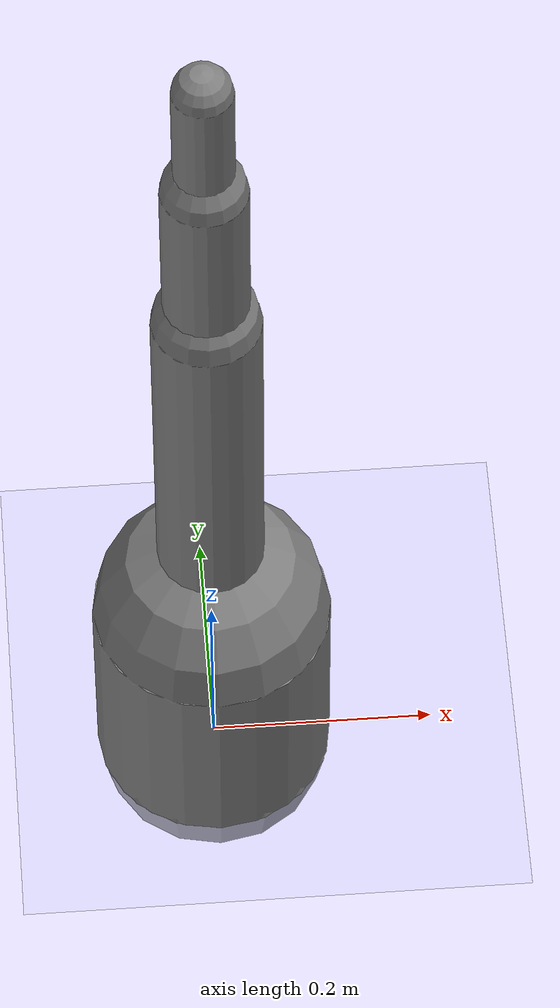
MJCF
<?xml version='1.0' encoding='UTF-8'?>
<mujoco model="robot_model">
  <worldbody>
    <light name="light" pos="0 -3 10" dir="0 0.5 -1" diffuse=".8 .8 .8" specular="0.1 0.1 0.1"/>
    <geom name="floor" type="plane" size="10.0 10.0 0.1" pos="0 0 0" rgba="0.8 0.8 1 1"/>
    <body name="limb0" pos="0 0 0">
      <geom type="capsule" fromto="0 0 0 0 0 0.20822529286652866" size="0.10680940817767876" density="1013.6255908064911"/>
      <site type="sphere" size="0.01" name="limb0_site0" pos="0 0 0.1127459211622351"/>
      <freejoint name="limb0_root"/>
      <body name="limb1" pos="0 0 0.1127459211622351">
        <geom type="capsule" fromto="0 0 0 0 0 0.13070700775450075" size="0.05144591158609257" density="1095.5335490929035"/>
        <site type="sphere" size="0.01" name="limb1_site0" pos="0 0 0.08043514653838456"/>
        <body name="limb2" pos="0 0 0.08043514653838456">
          <geom type="capsule" fromto="0 0 0 0 0 0.3682497658774522" size="0.024971331059982557" density="917.7516092594001"/>
          <site type="sphere" size="0.01" name="limb2_site0" pos="0 0 0.09207219280787138"/>
          <site type="sphere" size="0.01" name="limb2_site1" pos="0 0 0.29324622609582907"/>
          <site type="sphere" size="0.01" name="limb2_site2" pos="0 0 0.1099947809790686"/>
          <body name="limb3" pos="0 0 0.09207219280787138">
            <geom type="capsule" fromto="0 0 0 0 0 0.36018371050712655" size="0.04742167937922778" density="950.7573844567521"/>
            <site type="sphere" size="0.01" name="limb3_site0" pos="0 0 0.3364272593522445"/>
            <site type="sphere" size="0.01" name="limb3_site1" pos="0 0 0.14105478471532545"/>
            <site type="sphere" size="0.01" name="limb3_site2" pos="0 0 0.0862169741592256"/>
            <body name="limb4" pos="0 0 0.3364272593522445">
              <geom type="capsule" fromto="0 0 0 0 0 0.33357355454118964" size="0.025721886316282184" density="1152.2444985708694"/>
              <joint name="joint_limb3_limb4_0" type="hinge" axis="0 1 0" range="-55.77951967090702 55.77951967090702" damping="5.0"/>
            </body>
            <body name="limb5" pos="0 0 0.14105478471532545">
              <geom type="capsule" fromto="0 0 0 0 0 0.33772001207987873" size="0.03287477564303769" density="670.3289804057066"/>
              <joint name="joint_limb3_limb5_0" type="hinge" axis="1 0 0" range="-42.71575935333797 42.71575935333797" damping="5.0"/>
            </body>
            <body name="limb6" pos="0 0 0.0862169741592256">
              <geom type="capsule" fromto="0 0 0 0 0 0.4330576590613591" size="0.023360613743295393" density="1029.6786459909467"/>
              <joint name="joint_limb3_limb6_0" type="hinge" axis="0 0 1" range="-107.64842308107038 107.64842308107038" damping="5.0"/>
            </body>
            <joint name="joint_limb2_limb3_0" type="hinge" axis="0 0 1" range="-26.74100582343022 26.74100582343022" damping="5.0"/>
          </body>
          <body name="limb7" pos="0 0 0.29324622609582907">
            <geom type="capsule" fromto="0 0 0 0 0 0.18114153595298652" size="0.029182999728912255" density="645.3693236876176"/>
            <joint name="joint_limb2_limb7_0" type="hinge" axis="0 0 1" range="-25.20213010644096 25.20213010644096" damping="5.0"/>
          </body>
          <body name="limb8" pos="0 0 0.1099947809790686">
            <geom type="capsule" fromto="0 0 0 0 0 0.18420768308030824" size="0.031622547812822484" density="917.3110554534932"/>
            <site type="sphere" size="0.01" name="limb8_site0" pos="0 0 0.17078899207799056"/>
            <site type="sphere" size="0.01" name="limb8_site1" pos="0 0 0.17480271573399891"/>
            <body name="limb9" pos="0 0 0.17078899207799056">
              <geom type="capsule" fromto="0 0 0 0 0 0.1421981118280918" size="0.03460440672979314" density="903.2865212317674"/>
              <joint name="joint_limb8_limb9_0" type="hinge" axis="0 1 0" range="-115.45904936907372 115.45904936907372" damping="5.0"/>
            </body>
            <body name="limb10" pos="0 0 0.17480271573399891">
              <geom type="capsule" fromto="0 0 0 0 0 0.34808538080615115" size="0.03700914499396302" density="1196.0772041882592"/>
              <joint name="joint_limb8_limb10_0" type="hinge" axis="0 1 0" range="-46.85535040802664 46.85535040802664" damping="5.0"/>
            </body>
            <joint name="joint_limb2_limb8_0" type="hinge" axis="0 0 1" range="-38.415753434316244 38.415753434316244" damping="5.0"/>
          </body>
          <joint name="joint_limb1_limb2_0" type="hinge" axis="1 0 0" range="-74.25278810591644 74.25278810591644" damping="5.0"/>
        </body>
        <joint name="joint_limb0_limb1_0" type="hinge" axis="1 0 0" range="-49.97118905373848 49.97118905373848" damping="5.0"/>
      </body>
    </body>
  </worldbody>
  <actuator>
    <position name="position_actuator_joint_limb0_limb1_0" joint="joint_limb0_limb1_0" gear="1.1340308317964878" inheritrange="1" kp="10.0"/>
    <position name="position_actuator_joint_limb1_limb2_0" joint="joint_limb1_limb2_0" gear="2.0" inheritrange="1" kp="10.0"/>
    <position name="position_actuator_joint_limb2_limb3_0" joint="joint_limb2_limb3_0" gear="1.875168700315609" inheritrange="1" kp="10.0"/>
    <position name="position_actuator_joint_limb3_limb4_0" joint="joint_limb3_limb4_0" gear="1.3572947460946414" inheritrange="1" kp="10.0"/>
    <position name="position_actuator_joint_limb3_limb5_0" joint="joint_limb3_limb5_0" gear="1.4347807170290636" inheritrange="1" kp="10.0"/>
    <position name="position_actuator_joint_limb3_limb6_0" joint="joint_limb3_limb6_0" gear="0.5878520522077915" inheritrange="1" kp="10.0"/>
    <position name="position_actuator_joint_limb2_limb7_0" joint="joint_limb2_limb7_0" gear="1.1068277597322922" inheritrange="1" kp="10.0"/>
    <position name="position_actuator_joint_limb2_limb8_0" joint="joint_limb2_limb8_0" gear="1.652074462234623" inheritrange="1" kp="10.0"/>
    <position name="position_actuator_joint_limb8_limb9_0" joint="joint_limb8_limb9_0" gear="1.2498437205314705" inheritrange="1" kp="10.0"/>
    <position name="position_actuator_joint_limb8_limb10_0" joint="joint_limb8_limb10_0" gear="1.7116664984470362" inheritrange="1" kp="10.0"/>
  </actuator>
</mujoco>
